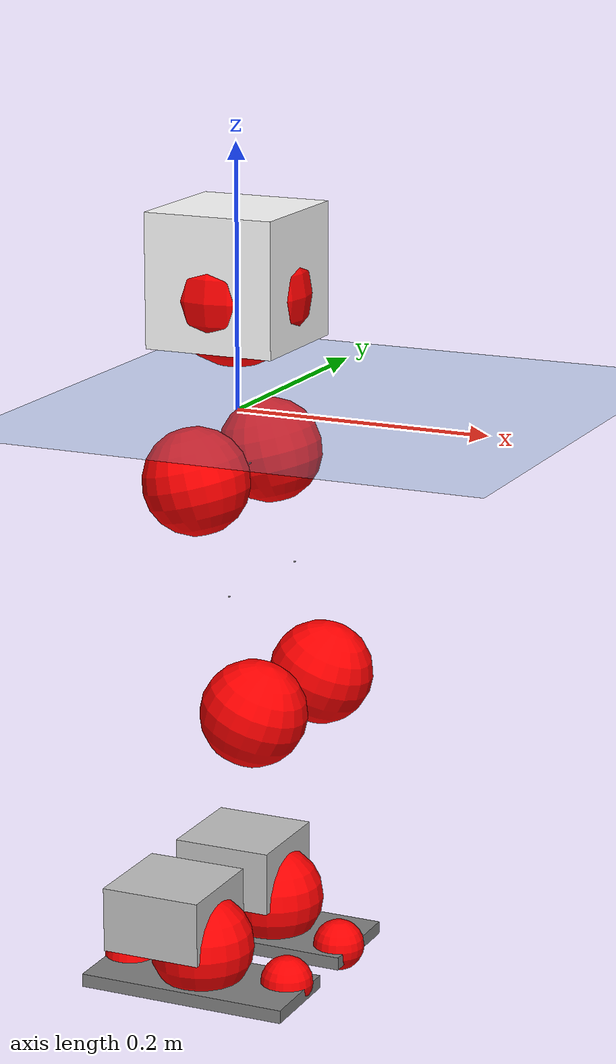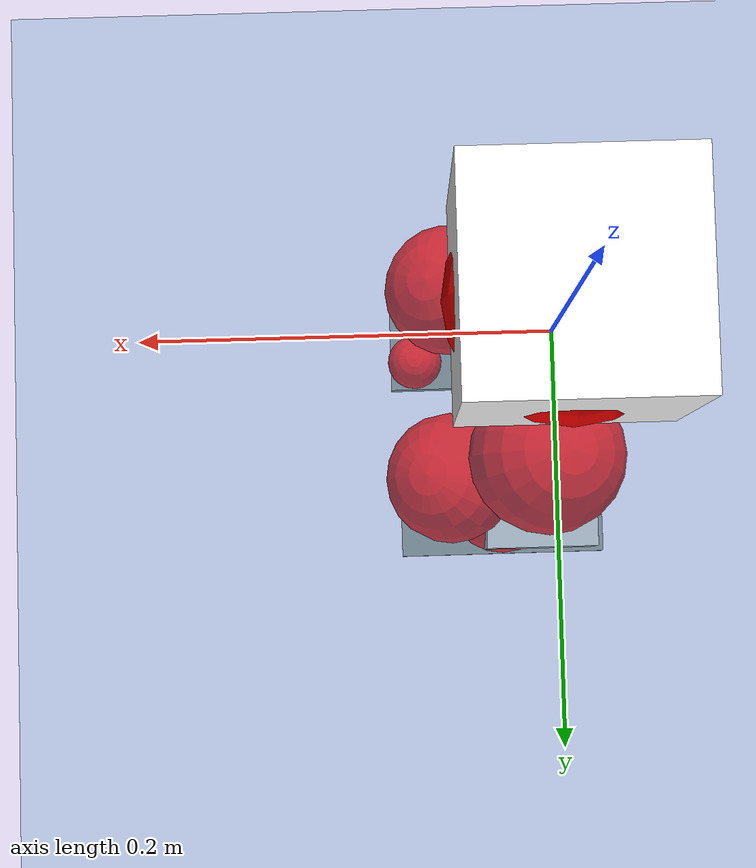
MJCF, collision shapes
<mujoco model="pi_12dof_release_v1">
  <compiler angle="radian" assetdir="assets" balanceinertia="true" inertiafromgeom="false"/>

  <option timestep="0.005" density="1.2" viscosity="2e-05"/>

  <size nkey="1"/>

  <visual>
    <quality shadowsize="8192"/>
    <map shadowclip="0.5"/>
  </visual>

  <default>
    <default class="/">
      <joint armature="0.01" damping="0.01" frictionloss="0.01"/>
      <geom contype="0" conaffinity="0" group="1" solref="-1000 -80"/>
      <site size="0.01 0.005 0.005" group="5"/>
      <general forcelimited="true" biastype="affine" gainprm="20" biasprm="0 -20 -0.5"/>
      <default class="foot">
        <geom size="0.0845 0.036 0.005" type="box" condim="6" group="4" priority="1" friction="0.9 0.2 0.2" solimp="0.015 1 0.005"/>
      </default>
      <default class="reward_collision_sphere">
        <geom group="5" rgba="1 0 0 1"/>
      </default>
    </default>
  </default>

  <asset>
    <texture type="skybox" colorspace="auto" name="//unnamed_texture_0" builtin="gradient" rgb1="0.95 0.95 0.95" rgb2="0.95 0.95 0.95" width="100" height="600"/>
    <texture type="2d" colorspace="auto" name="texplane" builtin="checker" rgb1="0.345 0.575 0.748" rgb2="0.345 0.575 0.748" markrgb="1 1 1" width="512" height="512"/>
    <material name="MatPlane" class="/" texture="texplane" texuniform="true" texrepeat="2 2" specular="0.9"/>
    <mesh name="baselink_1" class="/" file="baselink_1.STL"/>
    <mesh name="r_hip_pitch_link" class="/" file="r_hip_pitch_link.STL"/>
    <mesh name="r_hip_roll_link" class="/" file="r_hip_roll_link.STL"/>
    <mesh name="r_thigh_link" class="/" file="r_thigh_link.STL"/>
    <mesh name="r_calf_link" class="/" file="r_calf_link.STL"/>
    <mesh name="r_ankle_pitch_link" class="/" file="r_ankle_pitch_link.STL"/>
    <mesh name="r_ankle_roll_link" class="/" file="r_ankle_roll_link.STL"/>
    <mesh name="l_hip_pitch_link" class="/" file="l_hip_pitch_link.STL"/>
    <mesh name="l_hip_roll_link" class="/" file="l_hip_roll_link.STL"/>
    <mesh name="l_thigh_link" class="/" file="l_thigh_link.STL"/>
    <mesh name="l_calf_link" class="/" file="l_calf_link.STL"/>
    <mesh name="l_ankle_pitch_link" class="/" file="l_ankle_pitch_link.STL"/>
    <mesh name="l_ankle_roll_link" class="/" file="l_ankle_roll_link.STL"/>
  </asset>

  <worldbody>
    <geom name="floor" class="/" size="100 100 0.125" type="plane" group="0" material="MatPlane"/>
    <light name="toplight_shadow" class="/" pos="0 0 5" dir="0.0990148 0.0990148 -0.990148" type="directional" ambient="0.04 0.04 0.04" diffuse="0.55 0.55 0.55" specular="0.12 0.12 0.12"/>
    <light name="toplight_fill" class="/" pos="0 0 5" dir="0.0990148 0.0990148 -0.990148" type="directional" castshadow="false" ambient="0.04 0.04 0.04" diffuse="0.3 0.3 0.3" specular="0.08 0.08 0.08"/>
    <body name="trunk" pos="0.000502126 -0.00033188 0.000362349" quat="1 0.000597024 -0.000107789 -6.0207e-05">
      <inertial pos="0.000280499 -0.00291699 0.0505323" quat="0.694768 0.00721746 0.0124764 0.719089" mass="2.2804" diaginertia="0.00910216 0.00239293 0.0136468"/>
      <joint name="//unnamed_joint_0" type="free"/>
      <geom name="//unnamed_geom_1" class="/" type="mesh" density="0" rgba="1 1 1 1" mesh="baselink_1"/>
      <geom name="//unnamed_geom_2" class="/" size="0.0504726 0.0504726 0.0504726" pos="0 0 0.101796" type="box" rgba="1 1 1 1"/>
      <geom name="//unnamed_geom_3" class="reward_collision_sphere" size="0.0555198" pos="0 0 0.0890718"/>
      <site name="imu" class="/" pos="0.013058 9.49269e-06 -0.0131119" size="0.0100945"/>
      <camera name="track" class="/" pos="0 -1.5377 0" quat="0.707107 0.707107 0 0" mode="trackcom"/>
      <camera name="ego_camera" class="/" pos="0.0740287 0 0.229042" quat="-0.5 -0.5 0.5 0.5"/>
      <body name="r_hip_pitch_link" pos="-0.00238342 -0.0202607 -0.0431159" quat="0.992192 -9.82829e-06 -0.12472 -5.90879e-05">
        <inertial pos="0.0010029 -0.046113 -0.000386435" quat="-0.0191531 0.705952 -0.0280691 0.707444" mass="0.378819" diaginertia="9.97664e-05 2.47775e-05 0.00026929"/>
        <joint name="r_hip_pitch_joint" class="/" pos="0 0 0" axis="0.0017643 -0.999998 -0.000551992" stiffness="0.0116159" range="-1.76845 1.20077" armature="0.00872652" damping="0.0133088" frictionloss="0.0095858"/>
        <geom name="//unnamed_geom_4" class="/" type="mesh" density="0" rgba="0.75294 0.75294 0.75294 1" mesh="r_hip_pitch_link"/>
        <geom name="//unnamed_geom_5" class="/" size="0.000504726 0.000504726 0.000504726" type="box" rgba="0.75294 0.75294 0.75294 1"/>
        <body name="r_hip_roll_link" pos="-0.00190245 -0.0408693 0.00232754" quat="0.999999 -0.000596603 -0.000923033 0.00086957">
          <inertial pos="-0.00275053 -0.000263771 -0.0764929" quat="0.707859 -0.0794512 -0.0957456 0.69531" mass="0.389729" diaginertia="0.000315419 7.31858e-05 0.000431426"/>
          <joint name="r_hip_roll_joint" class="/" pos="0 0 0" axis="-0.99991 0.0127297 -0.00413898" range="-0.141442 0.502276" armature="0.00887346" damping="0.000506923" frictionloss="0.0113632"/>
          <geom name="//unnamed_geom_6" class="/" type="mesh" density="0" rgba="0.75294 0.75294 0.75294 1" mesh="r_hip_roll_link"/>
          <geom name="//unnamed_geom_7" class="/" size="0.000504726 0.000504726 0.000504726" type="box" rgba="0.75294 0.75294 0.75294 1"/>
          <geom name="//unnamed_geom_8" class="reward_collision_sphere" size="0.040378"/>
          <body name="r_thigh_link" pos="0.00254165 0.00287057 -0.089052" quat="1 6.77104e-05 -0.00026741 3.48709e-05">
            <inertial pos="0.000649554 -0.000256891 -0.0620522" quat="0.736474 0.676461 0.00245589 0.00037329" mass="0.117613" diaginertia="0.000114443 2.55148e-05 0.000193563"/>
            <joint name="r_thigh_joint" class="/" pos="0 0 0" axis="-0.00470868 0.00197351 -0.999987" stiffness="0.00328566" range="-0.354491 0.617021" armature="0.0115171" damping="0" frictionloss="0.010916"/>
            <geom name="//unnamed_geom_9" class="/" type="mesh" density="0" rgba="0.75294 0.75294 0.75294 1" mesh="r_thigh_link"/>
            <geom name="//unnamed_geom_10" class="/" size="0.000504726 0.000504726 0.000504726" type="box" rgba="0.75294 0.75294 0.75294 1"/>
            <body name="r_calf_link" pos="-0.00185801 -0.00187097 -0.0894697" quat="0.947652 -2.09846e-05 0.319305 -1.04244e-05">
              <inertial pos="-0.00287359 -0.00294124 -0.0913446" quat="0.999909 -0.0134127 0.00108069 -0.000439548" mass="0.830898" diaginertia="0.00314165 0.000958337 0.000554932"/>
              <joint name="r_calf_joint" class="/" pos="0 0 0" axis="-0.0066371 -0.999928 -0.00998213" range="-1.65305 0.666574" armature="0.00927055" damping="0.010758" frictionloss="0.00983296"/>
              <geom name="//unnamed_geom_11" class="/" type="mesh" density="0" rgba="0.75294 0.75294 0.75294 1" mesh="r_calf_link"/>
              <geom name="//unnamed_geom_12" class="/" size="0.000504726 0.000504726 0.000504726" type="box" rgba="0.75294 0.75294 0.75294 1"/>
              <geom name="//unnamed_geom_13" class="reward_collision_sphere" size="0.040378"/>
              <body name="r_ankle_pitch_link" pos="0.00221217 -0.000800516 -0.180451" quat="0.980343 5.39556e-05 -0.197298 0.000341069">
                <inertial pos="0.00744343 0.00310627 -0.00228095" quat="-9.41e-05 0.700213 -0.00613277 0.713908" mass="0.189564" diaginertia="0.00028329 5.82121e-05 0.000417757"/>
                <joint name="r_ankle_pitch_joint" class="/" pos="0 0 0" axis="0.0105958 -0.999937 0.00357449" range="-1.2424 0.550391" armature="0.0112432" damping="0" frictionloss="0.0104835"/>
                <geom name="//unnamed_geom_14" class="/" type="mesh" density="0" rgba="0.75294 0.75294 0.75294 1" mesh="r_ankle_pitch_link"/>
                <geom name="//unnamed_geom_15" class="/" size="0.0393686 0.040378 0.0252363" type="box" rgba="0.75294 0.75294 0.75294 1"/>
                <body name="r_ankle_roll_link" pos="0.0727359 0.000464605 0.000836469" quat="0.999999 -8.82345e-05 0.000172371 0.000995585">
                  <inertial pos="-0.0263541 0.000209463 -0.0187" quat="0.553942 0.427718 0.43225 0.568653" mass="0.566629" diaginertia="0.00110985 0.000282062 0.000977063"/>
                  <joint name="r_ankle_roll_joint" class="/" pos="0 0 0" axis="-0.999942 0.00632432 0.00872607" stiffness="0.0031814" range="-0.102731 0.163037" armature="0.0113651" damping="0.0135254" frictionloss="0.00986822"/>
                  <geom name="//unnamed_geom_16" class="/" type="mesh" density="0" rgba="0.75294 0.75294 0.75294 1" mesh="r_ankle_roll_link"/>
                  <geom name="//unnamed_geom_17" class="/" type="mesh" rgba="0.75294 0.75294 0.75294 1" mesh="r_ankle_roll_link"/>
                  <geom name="right_foot" class="foot" size="0.083375 0.0363315 0.00514432" pos="-0.0503395 0 -0.055988"/>
                  <geom name="//unnamed_geom_19" class="reward_collision_sphere" size="0.040378" pos="-0.0493525 0 -0.0254491"/>
                  <geom name="//unnamed_geom_20" class="reward_collision_sphere" size="0.020189" pos="0.0148057 0.015377 -0.0508982"/>
                  <geom name="//unnamed_geom_21" class="reward_collision_sphere" size="0.020189" pos="-0.118446 0.015377 -0.0508982"/>
                  <site name="right_foot" class="foot" pos="-0.0503395 0 -0.055988" size="0.0100945"/>
                </body>
              </body>
            </body>
          </body>
        </body>
      </body>
      <body name="l_hip_pitch_link" pos="0.00209691 0.0155423 -0.044646" quat="0.992195 -5.60727e-05 -0.124692 1.82281e-05">
        <inertial pos="0.00123637 0.0436574 -0.00267203" quat="-0.0255924 0.705132 0.0246997 0.708184" mass="0.413826" diaginertia="0.000127007 2.94242e-05 0.000338573"/>
        <joint name="l_hip_pitch_joint" class="/" pos="0 0 0" axis="-0.00133412 0.999997 -0.00198168" range="-1.27021 1.7567" armature="0.0102199" damping="0.0224946" frictionloss="0.00883934"/>
        <geom name="//unnamed_geom_22" class="/" type="mesh" density="0" rgba="0.75294 0.75294 0.75294 1" mesh="l_hip_pitch_link"/>
        <geom name="//unnamed_geom_23" class="/" size="0.000504726 0.000504726 0.000504726" type="box" rgba="0.75294 0.75294 0.75294 1"/>
        <body name="l_hip_roll_link" pos="-0.00278279 0.0420127 0.00161217" quat="1 -0.000124246 -0.00017597 -0.000107928">
          <inertial pos="-0.00400512 0.00025305 -0.0797982" quat="0.699915 -0.0747547 -0.0761212 0.706213" mass="0.382346" diaginertia="0.000293614 7.44919e-05 0.000417706"/>
          <joint name="l_hip_roll_joint" class="/" pos="0 0 0" axis="-0.999999 -0.000560834 0.000879285" range="-0.494009 0.134136" armature="0.0103448" damping="0.0194639" frictionloss="0.00907679"/>
          <geom name="//unnamed_geom_24" class="/" type="mesh" density="0" rgba="0.75294 0.75294 0.75294 1" mesh="l_hip_roll_link"/>
          <geom name="//unnamed_geom_25" class="/" size="0.000504726 0.000504726 0.000504726" type="box" rgba="0.75294 0.75294 0.75294 1"/>
          <geom name="//unnamed_geom_26" class="reward_collision_sphere" size="0.040378"/>
          <body name="l_thigh_link" pos="-0.00178595 0.000264774 -0.0890436" quat="1 -6.71922e-07 -1.9645e-06 -1.3935e-05">
            <inertial pos="0.00189885 0.00139003 -0.0608568" quat="0.682986 0.730413 -0.00341031 -0.00393752" mass="0.118756" diaginertia="0.0001162 2.6965e-05 0.000197867"/>
            <joint name="l_thigh_joint" class="/" pos="0 0 0" axis="-0.000117785 -0.000263168 -1" range="-0.650979 0.252306" armature="0.0101901" damping="0.00921341" frictionloss="0.0103604"/>
            <geom name="//unnamed_geom_27" class="/" type="mesh" density="0" rgba="0.75294 0.75294 0.75294 1" mesh="l_thigh_link"/>
            <geom name="//unnamed_geom_28" class="/" size="0.000504726 0.000504726 0.000504726" type="box" rgba="0.75294 0.75294 0.75294 1"/>
            <body name="l_calf_link" pos="0.0011885 -0.000994554 -0.0883786" quat="0.947535 -0.000335578 0.319653 0.000481567">
              <inertial pos="-0.00178786 0.00373079 -0.091203" quat="0.999899 0.00239914 0.00273302 0.0137135" mass="0.842978" diaginertia="0.00319817 0.000920776 0.000567364"/>
              <joint name="l_calf_joint" class="/" pos="0 0 0" axis="-0.0132732 0.999901 -0.00459612" range="-0.653035 1.66217" armature="0.010283" damping="0" frictionloss="0.0103775"/>
              <geom name="//unnamed_geom_29" class="/" type="mesh" density="0" rgba="0.75294 0.75294 0.75294 1" mesh="l_calf_link"/>
              <geom name="//unnamed_geom_30" class="/" size="0.000504726 0.000504726 0.000504726" type="box" rgba="0.75294 0.75294 0.75294 1"/>
              <geom name="//unnamed_geom_31" class="reward_collision_sphere" size="0.040378"/>
              <body name="l_ankle_pitch_link" pos="0.00231256 0.00153434 -0.18133" quat="0.980285 -0.000796228 -0.197588 0.000292016">
                <inertial pos="0.00530632 0.0012244 -0.000970868" quat="-0.00349464 0.706741 0.00305289 0.707457" mass="0.169709" diaginertia="0.000270278 5.8283e-05 0.000392995"/>
                <joint name="l_ankle_pitch_joint" class="/" pos="0 0 0" axis="0.00127803 0.999999 -0.00113723" range="-0.544314 1.25549" armature="0.00897444" damping="0.00657839" frictionloss="0.0105945"/>
                <geom name="//unnamed_geom_32" class="/" type="mesh" density="0" rgba="0.75294 0.75294 0.75294 1" mesh="l_ankle_pitch_link"/>
                <geom name="//unnamed_geom_33" class="/" size="0.0393686 0.040378 0.0252363" type="box" rgba="0.75294 0.75294 0.75294 1"/>
                <body name="l_ankle_roll_link" pos="0.0742356 0.00272181 -0.000519505" quat="0.999999 0.000175848 0.000656773 0.00100437">
                  <inertial pos="-0.0213366 -0.00223321 -0.0190435" quat="0.567323 0.434851 0.434169 0.548222" mass="0.540882" diaginertia="0.00103321 0.00027728 0.000923067"/>
                  <joint name="l_ankle_roll_joint" class="/" pos="0 0 0" axis="-0.999999 0.000495736 -0.00088612" range="-0.0966971 0.102181" armature="0.0116382" damping="0.0218705" frictionloss="0.0107254"/>
                  <geom name="//unnamed_geom_34" class="/" type="mesh" density="0" rgba="0.75294 0.75294 0.75294 1" mesh="l_ankle_roll_link"/>
                  <geom name="//unnamed_geom_35" class="/" type="mesh" rgba="0.75294 0.75294 0.75294 1" mesh="l_ankle_roll_link"/>
                  <geom name="left_foot" class="foot" size="0.0758096 0.0406015 0.0051228" pos="-0.0503395 0 -0.055988"/>
                  <geom name="//unnamed_geom_37" class="reward_collision_sphere" size="0.040378" pos="-0.0493525 0 -0.0254491"/>
                  <geom name="//unnamed_geom_38" class="reward_collision_sphere" size="0.020189" pos="0.0148057 -0.015377 -0.0508982"/>
                  <geom name="//unnamed_geom_39" class="reward_collision_sphere" size="0.020189" pos="-0.118446 -0.015377 -0.0508982"/>
                  <site name="left_foot" class="foot" pos="-0.0503395 0 -0.055988" size="0.0100945"/>
                </body>
              </body>
            </body>
          </body>
        </body>
      </body>
    </body>
  </worldbody>

  <contact>
    <pair class="/" geom1="floor" geom2="right_foot" name="//unnamed_contact_1"/>
    <pair class="/" geom1="floor" geom2="left_foot" name="//unnamed_contact_0"/>
  </contact>

  <actuator>
    <general name="r_hip_pitch_joint" class="/" joint="r_hip_pitch_joint" forcerange="-23.4516 23.4516" gainprm="19.272" biasprm="0 -19.272 -0.49652"/>
    <general name="r_hip_roll_joint" class="/" joint="r_hip_roll_joint" forcerange="-20.9691 20.9691" gainprm="19.272" biasprm="0 -19.272 -0.49652"/>
    <general name="r_thigh_joint" class="/" joint="r_thigh_joint" forcerange="-20.8143 20.8143" gainprm="19.272" biasprm="0 -19.272 -0.49652"/>
    <general name="r_calf_joint" class="/" joint="r_calf_joint" forcerange="-23.3007 23.3007" gainprm="19.272" biasprm="0 -19.272 -0.49652"/>
    <general name="r_ankle_pitch_joint" class="/" joint="r_ankle_pitch_joint" forcerange="-20.3774 20.3774" gainprm="19.272" biasprm="0 -19.272 -0.49652"/>
    <general name="r_ankle_roll_joint" class="/" joint="r_ankle_roll_joint" forcerange="-21.9319 21.9319" gainprm="19.272" biasprm="0 -19.272 -0.49652"/>
    <general name="l_hip_pitch_joint" class="/" joint="l_hip_pitch_joint" forcerange="-19.0272 19.0272" gainprm="19.272" biasprm="0 -19.272 -0.49652"/>
    <general name="l_hip_roll_joint" class="/" joint="l_hip_roll_joint" forcerange="-19.2448 19.2448" gainprm="19.272" biasprm="0 -19.272 -0.49652"/>
    <general name="l_thigh_joint" class="/" joint="l_thigh_joint" forcerange="-20.9985 20.9985" gainprm="19.272" biasprm="0 -19.272 -0.49652"/>
    <general name="l_calf_joint" class="/" joint="l_calf_joint" forcerange="-21.6041 21.6041" gainprm="19.272" biasprm="0 -19.272 -0.49652"/>
    <general name="l_ankle_pitch_joint" class="/" joint="l_ankle_pitch_joint" forcerange="-23.2509 23.2509" gainprm="19.272" biasprm="0 -19.272 -0.49652"/>
    <general name="l_ankle_roll_joint" class="/" joint="l_ankle_roll_joint" forcerange="-21.9511 21.9511" gainprm="19.272" biasprm="0 -19.272 -0.49652"/>
  </actuator>

  <sensor>
    <gyro site="imu" name="imu_angular_velocity"/>
    <velocimeter site="imu" name="imu_linear_velocity"/>
    <framelinvel objtype="site" objname="left_foot" name="left_foot_global_linear_velocity"/>
    <framelinvel objtype="site" objname="right_foot" name="right_foot_global_linear_velocity"/>
  </sensor>

  <keyframe>
    <key name="home" qpos="0 0 0.291 1 0 0 0 0.4 0 0 -0.8 0.4 0 -0.4 0 0 0.8 -0.4 0"/>
  </keyframe>
</mujoco>
